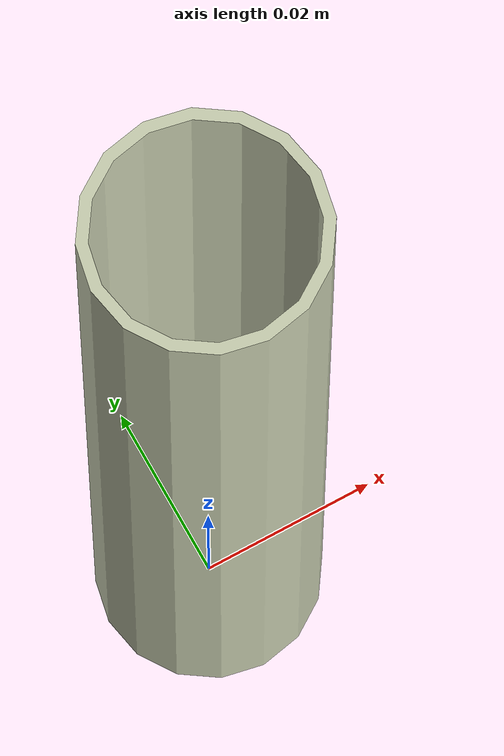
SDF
<?xml version="1.0" ?>
<sdf version="1.5">
  <model name="tube_2_25cm">
    <link name="link">
      <pose>0 0 0.05725 0 0 0</pose>
      <inertial>
        <mass>0.0354</mass>
        <inertia>
          <ixx>4.1178128125e-05</ixx>
          <ixy>0</ixy>
          <ixz>0</ixz>
          <iyy>4.1178128125e-05</iyy>
          <iyz>0</iyz>
          <izz>5.005781250000001e-06</izz>
        </inertia>
      </inertial>

      <collision name="collision">
        <geometry>
          <mesh>
            <uri>model://tube_2_25cm/meshes/tube_2_25.dae</uri>
          </mesh>
        </geometry>
        <surface>
          <contact>
            <!-- stainless steel 18-8 -->
            <poissons_ratio>0.305</poissons_ratio>
            <elastic_modulus>2.0e+11</elastic_modulus>
            <ode>
              <kp>100000</kp>
              <kd>100</kd>
              <max_vel>100.0</max_vel>
              <min_depth>0.001</min_depth>
            </ode>
          </contact>
          <friction>
            <torsional>
              <coefficient>1.0</coefficient>
              <use_patch_radius>0</use_patch_radius>
              <surface_radius>0.01</surface_radius>
            </torsional>
          </friction>
        </surface>
      </collision>

      <visual name="visual">
        <geometry>
          <mesh>
            <uri>model://tube_2_25cm/meshes/tube_2_25.dae</uri>
          </mesh>
        </geometry>
      </visual>

    </link>
  </model>
</sdf>
